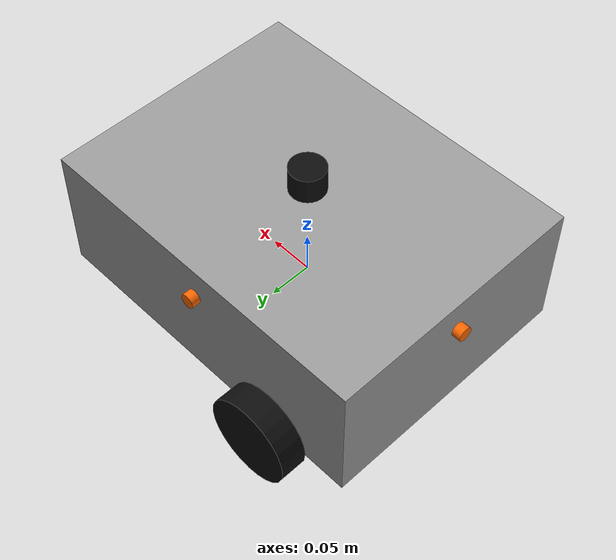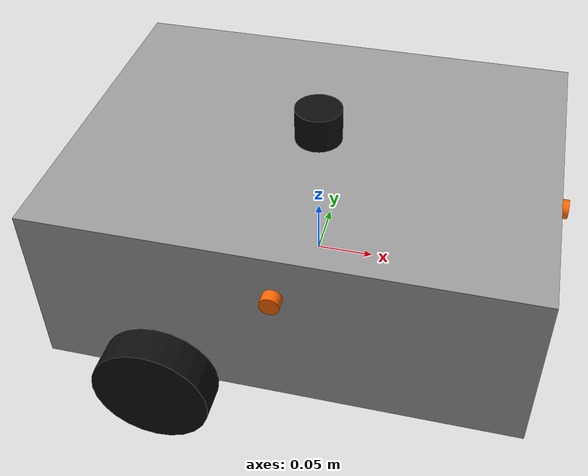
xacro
<?xml version="1.0"?>
<robot name="ultrasonic_box_bot" xmlns:xacro="http://www.ros.org/wiki/xacro">

  <!-- ================= PROPERTIES ================= -->
  <xacro:property name="box_x" value="0.4"/>   <!-- length -->
  <xacro:property name="box_y" value="0.3"/>   <!-- width -->
  <xacro:property name="box_z" value="0.15"/>  <!-- height -->
  <xacro:property name="box_mass" value="5.0"/>
  <xacro:property name="wheel_radius" value="0.05"/>
  <xacro:property name="wheel_width" value="0.03"/>
  <xacro:property name="wheel_mass" value="0.2"/>

  <xacro:property name="us_len" value="0.01"/>
  <xacro:property name="us_radius" value="0.008"/>
  <xacro:property name="us_range_min" value="0.02"/>
  <xacro:property name="us_range_max" value="4.0"/>
  <xacro:property name="us_fov" value="0.26"/> <!-- ~15 deg cone in radians -->
  <xacro:property name="lidar_fov" value="3.14159"/> <!-- ~180 deg in radians -->
  <xacro:property name="lidar_range_max" value="7.0"/>

  <material name="grey">
    <color rgba="0.6 0.6 0.6 1.0"/>
  </material>
  <material name="black">
    <color rgba="0.05 0.05 0.05 1.0"/>
  </material>
  <material name="orange">
    <color rgba="1.0 0.4 0.0 1.0"/>
  </material>

  <!-- ================= INERTIA MACROS ================= -->
  <xacro:macro name="box_inertia" params="mass x y z">
    <inertial>
      <mass value="${mass}"/>
      <inertia
        ixx="${mass/12.0*(y*y+z*z)}" ixy="0.0" ixz="0.0"
        iyy="${mass/12.0*(x*x+z*z)}" iyz="0.0"
        izz="${mass/12.0*(x*x+y*y)}"/>
    </inertial>
  </xacro:macro>

  <xacro:macro name="cylinder_inertia" params="mass r h">
    <inertial>
      <mass value="${mass}"/>
      <inertia
        ixx="${mass/12.0*(3*r*r+h*h)}" ixy="0.0" ixz="0.0"
        iyy="${mass/12.0*(3*r*r+h*h)}" iyz="0.0"
        izz="${mass/2.0*r*r}"/>
    </inertial>
  </xacro:macro>

  <!-- ================= BASE LINK ================= -->
  <link name="base_footprint"/>

  <joint name="base_footprint_joint" type="fixed">
    <parent link="base_footprint"/>
    <child link="base_link"/>
    <origin xyz="0 0 ${wheel_radius}" rpy="0 0 0"/>
  </joint>

  <link name="base_link">
    <visual>
      <origin xyz="0 0 0" rpy="0 0 0"/>
      <geometry>
        <box size="${box_x} ${box_y} ${box_z}"/>
      </geometry>
      <material name="grey"/>
    </visual>
    <collision>
      <origin xyz="0 0 0" rpy="0 0 0"/>
      <geometry>
        <box size="${box_x} ${box_y} ${box_z}"/>
      </geometry>
    </collision>
    <xacro:box_inertia mass="${box_mass}" x="${box_x}" y="${box_y}" z="${box_z}"/>
  </link>

  <!-- ================= WHEELS ================= -->
  <xacro:macro name="wheel" params="prefix reflect_y">
    <link name="${prefix}_wheel_link">
      <visual>
        <origin xyz="0 0 0" rpy="1.5708 0 0"/>
        <geometry>
          <cylinder radius="${wheel_radius}" length="${wheel_width}"/>
        </geometry>
        <material name="black"/>
      </visual>
      <collision>
        <origin xyz="0 0 0" rpy="1.5708 0 0"/>
        <geometry>
          <cylinder radius="${wheel_radius}" length="${wheel_width}"/>
        </geometry>
      </collision>
      <xacro:cylinder_inertia mass="${wheel_mass}" r="${wheel_radius}" h="${wheel_width}"/>
    </link>

    <joint name="${prefix}_wheel_joint" type="continuous">
      <parent link="base_link"/>
      <child link="${prefix}_wheel_link"/>
      <origin xyz="${-box_x/4.0} ${reflect_y*(box_y/2.0 + wheel_width/2.0)} ${-box_z/2.0}" rpy="0 0 0"/>
      <axis xyz="0 1 0"/>
    </joint>

  </xacro:macro>

  <xacro:wheel prefix="left" reflect_y="1"/>
  <xacro:wheel prefix="right" reflect_y="-1"/>

  <!-- Rear caster -->
  <link name="caster_wheel_link">
    <visual>
      <geometry>
        <sphere radius="${wheel_radius/2.0}"/>
      </geometry>
      <material name="black"/>
    </visual>
    <collision>
      <geometry>
        <sphere radius="${wheel_radius}"/>
      </geometry>
    </collision>
    <inertial>
      <mass value="0.05"/>
      <inertia ixx="0.0001" ixy="0" ixz="0" iyy="0.0001" iyz="0" izz="0.0001"/>
    </inertial>
  </link>

  <joint name="caster_wheel_joint" type="fixed">
    <parent link="base_link"/>
    <child link="caster_wheel_link"/>
    <origin xyz="${(box_x/2.0 - wheel_radius/2.0)} 0 ${-(wheel_radius/2.0 + box_z/2.0 - wheel_radius/4.0)}" rpy="0 0 0"/>
  </joint>

  <!-- ================= ULTRASONIC SENSOR MACRO ================= -->
  <xacro:macro name="ultrasonic_sensor" params="name x y z yaw">
    <link name="${name}_link">
      <visual>
        <origin xyz="0 0 0" rpy="0 1.5708 0"/>
        <geometry>
          <cylinder radius="${us_radius}" length="${us_len}"/>
        </geometry>
        <material name="orange"/>
      </visual>
      <collision>
        <origin xyz="0 0 0" rpy="0 1.5708 0"/>
        <geometry>
          <cylinder radius="${us_radius}" length="${us_len}"/>
        </geometry>
      </collision>
      <inertial>
        <mass value="0.01"/>
        <inertia ixx="1e-6" ixy="0" ixz="0" iyy="1e-6" iyz="0" izz="1e-6"/>
      </inertial>
    </link>

    <joint name="${name}_joint" type="fixed">
      <parent link="base_link"/>
      <child link="${name}_link"/>
      <origin xyz="${x} ${y} ${z}" rpy="0 0 ${yaw}"/>
    </joint>
  </xacro:macro>

  <xacro:ultrasonic_sensor name="us_front" x="${box_x/2.0 + us_len/2.0}" y="0" z="${box_z/4.0}" yaw="0"/>
  <xacro:ultrasonic_sensor name="us_back"  x="${-(box_x/2.0 + us_len/2.0)}" y="0" z="${box_z/4.0}" yaw="3.14159"/>
  <xacro:ultrasonic_sensor name="us_left"  x="0" y="${box_y/2.0 + us_len/2.0}" z="${box_z/4.0}" yaw="1.5708"/>
  <xacro:ultrasonic_sensor name="us_right" x="0" y="${-(box_y/2.0 + us_len/2.0)}" z="${box_z/4.0}" yaw="-1.5708"/>

  <!-- ================= TOP-MOUNTED 2D LIDAR ================= -->
  <xacro:property name="lidar_radius" value="0.02"/>
  <xacro:property name="lidar_height" value="0.03"/>
  <xacro:property name="lidar_range_min" value="0.08"/>
  <xacro:property name="lidar_range_max" value="10.0"/>
  <xacro:property name="lidar_samples" value="361"/>

  <link name="lidar_link">
    <visual>
      <origin xyz="0 0 0" rpy="0 0 0"/>
      <geometry>
        <cylinder radius="${lidar_radius}" length="${lidar_height}"/>
      </geometry>
      <material name="black"/>
    </visual>
    <collision>
      <origin xyz="0 0 0" rpy="0 0 0"/>
      <geometry>
        <cylinder radius="${lidar_radius}" length="${lidar_height}"/>
      </geometry>
    </collision>
    <inertial>
      <mass value="0.05"/>
      <inertia ixx="1e-5" ixy="0" ixz="0" iyy="1e-5" iyz="0" izz="1e-5"/>
    </inertial>
  </link>

  <joint name="lidar_joint" type="fixed">
    <parent link="base_link"/>
    <child link="lidar_link"/>
    <origin xyz="0 0 ${box_z/2.0 + lidar_height/2.0}" rpy="0 0 0"/>
  </joint>

    <ros2_control name="MujocoSystem" type="system">
    <hardware>
      <plugin>mujoco_ros2_control/MujocoSystemInterface</plugin>

      <!-- Absolute path is used initially for reliable debugging. -->
      <param name="mujoco_model">
        /home/shadowb/ros2_ws/src/ultrasonic_box_bot_description/config/rover.xml
      </param>
    </hardware>

    <joint name="left_wheel_joint">
      <command_interface name="velocity">
        <param name="min">-20.0</param>
        <param name="max">20.0</param>
      </command_interface>

      <state_interface name="position"/>
      <state_interface name="velocity"/>
    </joint>

    <joint name="right_wheel_joint">
      <command_interface name="velocity">
        <param name="min">-20.0</param>
        <param name="max">20.0</param>
      </command_interface>

      <state_interface name="position"/>
      <state_interface name="velocity"/>
    </joint>
  </ros2_control>

</robot>
